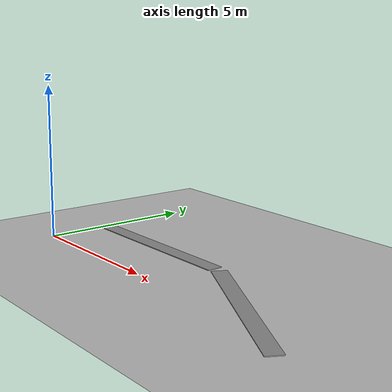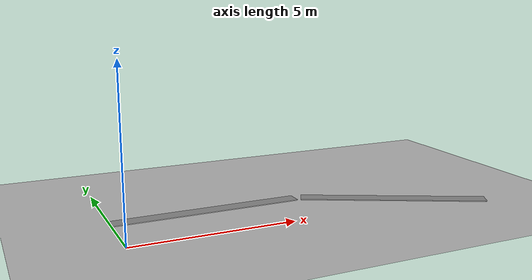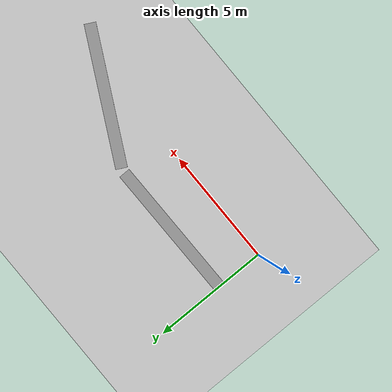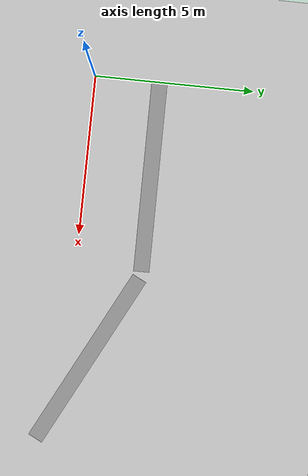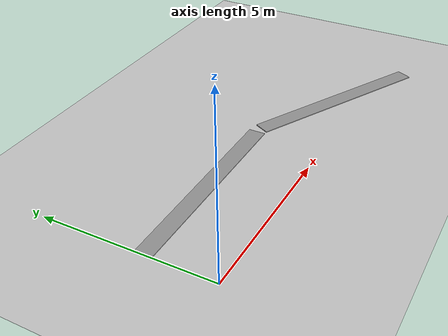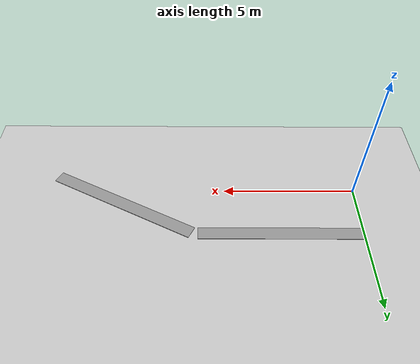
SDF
<sdf version="1.6">
 <world name="default">
  <light name="sun" type="directional">
   <pose>0 0 10 0 -0 0</pose>
   <diffuse>0.8 0.8 0.8 1</diffuse>
   <specular>0.2 0.2 0.2 1</specular>
   <attenuation>
    <range>1000</range>
    <constant>0.9</constant>
    <linear>0.01</linear>
    <quadratic>0.001</quadratic>
   </attenuation>
   <direction>-0.5 0.1 -0.9</direction>
  </light>
  <model name="ground_plane">
   <static>1</static>
   <link name="link">
    <collision name="collision">
     <geometry><plane><normal>0 0 1</normal><size>100 100</size></plane></geometry>
     <surface><friction><ode><mu>100</mu><mu2>50</mu2></ode></friction></surface>
    </collision>
    <visual name="visual">
     <cast_shadows>0</cast_shadows>
     <geometry><plane><normal>0 0 1</normal><size>100 100</size></plane></geometry>
     <material>
      <script><uri>file://media/materials/scripts/gazebo.material</uri><name>Gazebo/Grey</name></script>
     </material>
    </visual>
   </link>
  </model>
  <gravity>0 0 -9.8</gravity>
  <magnetic_field>6e-06 2.3e-05 -4.2e-05</magnetic_field>
  <atmosphere type="adiabatic"/>
  <physics name="default_physics" default="0" type="ode">
   <max_step_size>0.001</max_step_size>
   <real_time_factor>1</real_time_factor>
   <real_time_update_rate>1000</real_time_update_rate>
  </physics>
  <scene><ambient>0.4 0.4 0.4 1</ambient><background>0.7 0.7 0.7 1</background><shadows>1</shadows></scene>
  <spherical_coordinates>
   <surface_model>EARTH_WGS84</surface_model>
   <latitude_deg>0</latitude_deg>
   <longitude_deg>0</longitude_deg>
   <elevation>0</elevation>
   <heading_deg>0</heading_deg>
  </spherical_coordinates>
  <model name="unit_box_0_0_0_0">
   <link name="link">
    <pose>4.03611 1.74012 0 0 -0 0</pose>
    <inertial>
     <mass>0.137918</mass>
     <inertia>
      <ixx>0.00283246</ixx>
      <ixy>0</ixy>
      <ixz>0</ixz>
      <iyy>1.39815</iyy>
      <iyz>0</iyz>
      <izz>1.40096</izz>
     </inertia>
    </inertial>
    <visual name="visual">
     <geometry><box><size>6 0.495787 0.025162</size></box></geometry>
     <material>
      <script><name>Gazebo/Grey</name><uri>file://media/materials/scripts/gazebo.material</uri></script>
      <ambient>1 1 1 1</ambient>
      <diffuse>1 1 1 1</diffuse>
      <specular>1 1 1 1</specular>
      <emissive>1 1 1 1</emissive>
      <shader type="vertex"><normal_map>__default__</normal_map></shader>
     </material>
    </visual>
    <collision name="collision">
     <geometry><box><size>11.0295 0.495787 0.025162</size></box></geometry>
     <surface>
      <friction>
       <ode><mu>1</mu><mu2>1</mu2><fdir1>0 0 0</fdir1><slip1>0</slip1><slip2>0</slip2></ode>
       <torsional>
        <coefficient>1</coefficient>
        <patch_radius>0</patch_radius>
        <surface_radius>0</surface_radius>
        <use_patch_radius>1</use_patch_radius>
        <ode><slip>0</slip></ode>
       </torsional>
      </friction>
      <bounce><restitution_coefficient>0</restitution_coefficient><threshold>1e+06</threshold></bounce>
      <contact>
       <collide_without_contact>0</collide_without_contact>
       <collide_without_contact_bitmask>1</collide_without_contact_bitmask>
       <collide_bitmask>1</collide_bitmask>
       <ode>
        <soft_cfm>0</soft_cfm>
        <soft_erp>0.2</soft_erp>
        <kp>1e+13</kp>
        <kd>1</kd>
        <max_vel>0.01</max_vel>
        <min_depth>0</min_depth>
       </ode>
       <bullet>
        <split_impulse>1</split_impulse>
        <split_impulse_penetration_threshold>-0.01</split_impulse_penetration_threshold>
        <soft_cfm>0</soft_cfm>
        <soft_erp>0.2</soft_erp>
        <kp>1e+13</kp>
        <kd>1</kd>
       </bullet>
      </contact>
     </surface>
    </collision>
   </link>
   <static>0</static>
   <pose>-1.04218 0.291211 0.012665 -5.7e-05 -0 0.005265</pose>
  </model>
  <model name="unit_box_0_0_clone_0_0">
   <link name="link">
    <pose>4.02787 -1.21591 0.000167 0 -0 -0.482298</pose>
    <inertial>
     <mass>0.137918</mass>
     <inertia>
      <ixx>0.00283246</ixx>
      <ixy>0</ixy>
      <ixz>0</ixz>
      <iyy>1.39815</iyy>
      <iyz>0</iyz>
      <izz>1.40096</izz>
     </inertia>
    </inertial>
    <visual name="visual">
     <geometry><box><size>6 0.495787 0.025162</size></box></geometry>
     <material>
      <script><name>Gazebo/Grey</name><uri>file://media/materials/scripts/gazebo.material</uri></script>
      <ambient>1 1 1 1</ambient>
      <diffuse>1 1 1 1</diffuse>
      <specular>1 1 1 1</specular>
      <emissive>1 1 1 1</emissive>
      <shader type="vertex"><normal_map>__default__</normal_map></shader>
     </material>
    </visual>
    <collision name="collision">
     <geometry><box><size>11.0295 0.495787 0.025162</size></box></geometry>
     <surface>
      <friction>
       <ode><mu>1</mu><mu2>1</mu2><fdir1>0 0 0</fdir1><slip1>0</slip1><slip2>0</slip2></ode>
       <torsional>
        <coefficient>1</coefficient>
        <patch_radius>0</patch_radius>
        <surface_radius>0</surface_radius>
        <use_patch_radius>1</use_patch_radius>
        <ode><slip>0</slip></ode>
       </torsional>
      </friction>
      <bounce><restitution_coefficient>0</restitution_coefficient><threshold>1e+06</threshold></bounce>
      <contact>
       <collide_without_contact>0</collide_without_contact>
       <collide_without_contact_bitmask>1</collide_without_contact_bitmask>
       <collide_bitmask>1</collide_bitmask>
       <ode>
        <soft_cfm>0</soft_cfm>
        <soft_erp>0.2</soft_erp>
        <kp>1e+13</kp>
        <kd>1</kd>
        <max_vel>0.01</max_vel>
        <min_depth>0</min_depth>
       </ode>
       <bullet>
        <split_impulse>1</split_impulse>
        <split_impulse_penetration_threshold>-0.01</split_impulse_penetration_threshold>
        <soft_cfm>0</soft_cfm>
        <soft_erp>0.2</soft_erp>
        <kp>1e+13</kp>
        <kd>1</kd>
       </bullet>
      </contact>
     </surface>
    </collision>
   </link>
   <static>0</static>
   <pose>4.83393 1.8534 0.012414 0 -0 0.005265</pose>
  </model>
 </world>
</sdf>
